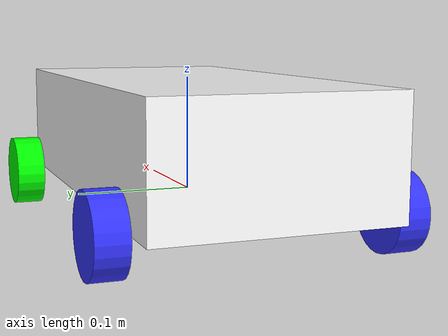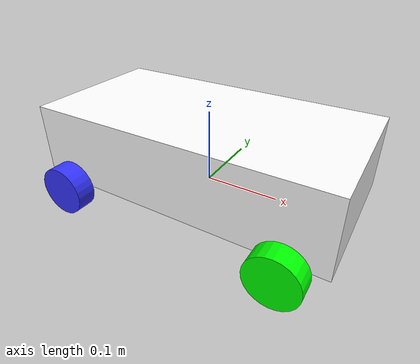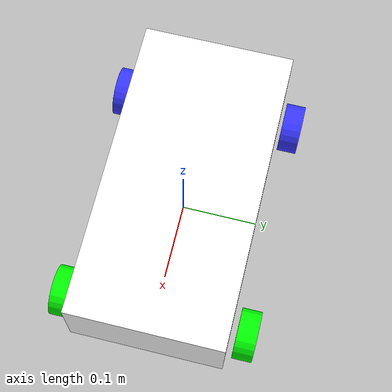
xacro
<?xml version="1.0"?>
<robot xmlns:xacro="http://www.ros.org/wiki/xacro" >

    <xacro:include filename="inertial_macros.xacro" />
    <material name="white">
        <color rgba = "1 1 1 1" />
    </material>
    <material name="orange">
        <color rgba = "1 0.3 0.1 1" />
    </material>
    <material name="blue">
        <color rgba = "0.2 0.2 1 1" />
    </material>
    <material name="black">
        <color rgba = "0 0 0 1" />
    </material>
    <material name="red">
        <color rgba = "1 0 0 1" />
    </material>
    <material name="green">
        <color rgba="0.0 1.0 0.0 1.0"/>
    </material>

    <link name="base_link" >

    </link>
    <!-- BASE_FOOTPRINT LINK necessary for slam_toolbox-->

    <joint name="base_footprint_joint" type="fixed">
        <origin xyz="0.0 0.0 0.0" rpy="0.0 0.0 0.0"/>
        <parent link="base_link"/>
        <child link="base_footprint"/>
    </joint>

    <link name="base_footprint">
    </link>

    <!-- CHASSIS LINK -->
    <joint name = "chassis_joint" type = "fixed">
        <parent link = "base_link" />
        <child link = "chassis" />
        <origin xyz = "0 0 0.05" />
    </joint>

    <link name="chassis" >
        <visual>
            <origin xyz = "0 0 0" />
            <geometry>
                <box size="0.4 0.2 0.1" />
            </geometry>
            <material name = "white" />

        </visual>
        <collision>
            <origin xyz = "0 0 0" />
            <geometry>
                <box size="0.4 0.2 0.1" />
            </geometry>
        </collision>
        <xacro:inertial_box mass="1.85" x="0.4" y="0.2" z="0.1">
            <origin xyz = "0 0 0" rpy = "0 0 0"/>          <!--xyz = "0.2 0 0.075"-->
        </xacro:inertial_box>
    </link>

    <gazebo reference="chassis">
        <material>Gazebo/White</material>
    </gazebo>

    <!-- front_left-->
    <link name="leftiii_wheel" >
        <visual>
            <origin xyz="0 0 0" rpy="-${pi/2} 0 0" />
            <geometry>
                <cylinder radius = "0.033" length = "0.026"/>
            </geometry>
            <material name = "green" />
        </visual>
        <collision>
            <origin xyz="0 0 0" rpy="-${pi/2} 0 0" />
            <geometry>
                <cylinder radius = "0.033" length = "0.026"/>
            </geometry>
        </collision>
        <xacro:inertial_cylinder mass = "0.1" radius = "0.033" length = "0.026" >
            <origin xyz = "0 0 0" rpy = "0 0 0"/>
        </xacro:inertial_cylinder>

        <inertial>
            <origin rpy="0 0 0" xyz="0 0 0" />
            <mass value="0.01" />
            <inertia ixx="10" ixy="0.0" ixz="0.0" iyy="10" iyz="0.0" izz="10" />
        </inertial>
    </link>

    <link name="art_w_left">
      <inertial>
        <origin rpy="0 0 0" xyz="0 0 0" />
        <mass value="0.01" />
        <inertia ixx="10" ixy="0.0" ixz="0.0" iyy="10" iyz="0.0" izz="10" />
      </inertial>
    </link>

    <!-- front_right-->
    <link name="rightiii_wheel" >
        <visual>
            <origin xyz="0 0 0" rpy="${pi/2} 0 0" />
            <geometry>
                <cylinder radius = "0.033" length = "0.026"/>
            </geometry>
            <material name = "green" />
        </visual>
        <collision>
            <origin xyz="0 0 0" rpy="${pi/2} 0 0" />
            <geometry>
                <cylinder radius = "0.033" length = "0.026"/>
            </geometry>
        </collision>
        <xacro:inertial_cylinder mass = "0.1" radius = "0.033" length = "0.026" >
            <origin xyz = "0 0 0" rpy = "0 0 0"/>
        </xacro:inertial_cylinder>

        <inertial>
            <origin rpy="0 0 0" xyz="0 0 0" />
            <mass value="0.01" />
            <inertia ixx="10" ixy="0.0" ixz="0.0" iyy="10" iyz="0.0" izz="10" />
        </inertial>
    </link>

    <link name="art_w_right">
      <inertial>
        <origin rpy="0 0 0" xyz="0 0 0" />
        <mass value="0.01" />
        <inertia ixx="10" ixy="0.0" ixz="0.0" iyy="10" iyz="0.0" izz="10" />
      </inertial>
    </link>

    <!-- rear_left -->
    <link name="left_wheel" >
        <visual>
            <geometry>
                <cylinder radius = "0.033" length = "0.026"/>
            </geometry>
            <material name = "blue" />
        </visual>
        <collision>
            <geometry>
                <cylinder radius = "0.033" length = "0.026"/>
            </geometry>
        </collision>
        <xacro:inertial_cylinder mass = "0.1" radius = "0.033" length = "0.026" >
            <origin xyz = "0 0 0" rpy = "0 0 0"/>
        </xacro:inertial_cylinder>

        <inertial>
            <origin rpy="0 0 0" xyz="0 0 0" />
            <mass value="0.01" />
            <inertia ixx="10" ixy="0.0" ixz="0.0" iyy="10" iyz="0.0" izz="10" />
        </inertial>
    </link>

    <!-- rear_right -->
    <link name="right_wheel" >
        <visual>
            <geometry>
                <cylinder radius = "0.033" length = "0.026"/>
            </geometry>
            <material name = "blue" />
        </visual>
        <collision>
            <geometry>
                <cylinder radius = "0.033" length = "0.026"/>
            </geometry>
        </collision>
        <xacro:inertial_cylinder mass = "0.1" radius = "0.033" length = "0.026" >
            <origin xyz = "0 0 0" rpy = "0 0 0"/>
        </xacro:inertial_cylinder>

        <inertial>
            <origin rpy="0 0 0" xyz="0 0 0" />
            <mass value="0.01" />
            <inertia ixx="10" ixy="0.0" ixz="0.0" iyy="10" iyz="0.0" izz="10" />
        </inertial>
    </link>

<!-- //////////////////////////////// ACKERMANN STEERING JOINTS //////////////////////////////////// -->

    <joint name="art_wheel_left" type="continuous">
        <parent link="art_w_left"/>
        <child link="leftiii_wheel"/>
        <origin xyz="0 0.05 0" rpy="0 0 0" />
        <axis xyz= "0 1 0" />             <!-- rotates around y-axis -->
        <dynamics damping="0.05" friction="0.01"/>
    </joint>

    <joint name="art_wheel_right" type="continuous">
        <parent link="art_w_right"/>
        <child link="rightiii_wheel"/>
        <origin xyz="0 -0.05 0" rpy="0 0 0" />   <!--${pi/2}-->
        <axis xyz= "0 1 0"/>
        <dynamics damping="0.05" friction="0.01"/>
    </joint>

    <joint name="base_art_w_left" type="revolute">
        <parent link="base_link"/>
        <child link="art_w_left"/>
        <origin xyz="0.15 0.071 0" rpy = "0 0 0" />
        <limit upper="0.5236" lower="-0.5236" velocity="20" effort="10"/>
        <axis xyz= "0 0 1" />             <!-- revolutes around z-axis -->
        <dynamics damping="0.05" friction="0.2"/>
    </joint>

    <joint name="base_art_w_right" type="revolute">
        <parent link="base_link"/>
        <child link="art_w_right"/>
        <origin xyz="0.15 -0.071 0" rpy = "0 0 0" />
        <limit upper="0.5236" lower="-0.5236" velocity="20" effort="10"/>
        <axis xyz= "0 0 1" />
        <dynamics damping="0.05" friction="0.2"/>
    </joint>

<!-- ////////////////////////////////////// JOINTS ///////////////////////////////////////////////// -->

    <joint name="left_wheel_3" type="continuous">
        <parent link="base_link"/>
        <child link="left_wheel"/>
        <origin xyz = "-0.15 0.118 0.0" rpy = "-${pi/2} 0 0" />
        <axis xyz = "0 0 1" />
        <dynamics damping="0.05" friction="0.01"/>
    </joint>

    <joint name="right_wheel_4" type="continuous">
        <parent link="base_link"/>
        <child link="right_wheel"/>
        <origin xyz = "-0.15 -0.118 0.0" rpy = "${pi/2} 0 0" />
        <axis xyz = "0 0 -1" />
        <dynamics damping="0.05" friction="0.01"/>
    </joint>

<!-- ////////////////////////////////////// GAZEBO ///////////////////////////////////////////////// -->

    <gazebo reference="leftiii_wheel">
        <material>Gazebo/Green</material>
        <mu1>0.001</mu1>
        <mu2>0.001</mu2>
        <kp>1000000</kp>
        <kd>0.1</kd>
        <selfCollide>true</selfCollide>
    </gazebo>

    <gazebo reference="rightiii_wheel">
        <material>Gazebo/Green</material>
        <mu1>0.001</mu1>
        <mu2>0.001</mu2>
        <kp>1000000</kp>
        <kd>0.1</kd>
        <selfCollide>true</selfCollide>
    </gazebo>

    <gazebo reference="left_wheel">
        <material>Gazebo/Blue</material>
        <mu1>1</mu1>
        <mu2>1</mu2>
        <kp>1000000</kp>
        <kd>0.1</kd>
        <selfCollide>true</selfCollide>
    </gazebo>

    <gazebo reference="right_wheel">
        <material>Gazebo/Blue</material>
        <mu1>1</mu1>
        <mu2>1</mu2>
        <kp>1000000</kp>
        <kd>0.1</kd>
        <selfCollide>true</selfCollide>
    </gazebo>

    <gazebo reference="art_w_left">
      <material>Gazebo/Green</material>
      <mu1>0.2</mu1>
      <mu2>0.2</mu2>
      <selfCollide>true</selfCollide>
    </gazebo>

    <gazebo reference="art_w_right">
      <material>Gazebo/Green</material>
      <mu1>0.2</mu1>
      <mu2>0.2</mu2>
      <selfCollide>true</selfCollide>
    </gazebo>

</robot>
